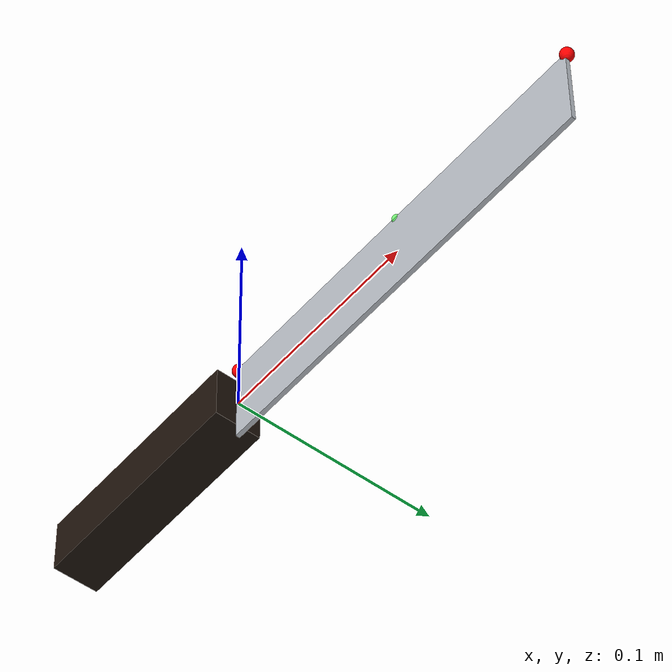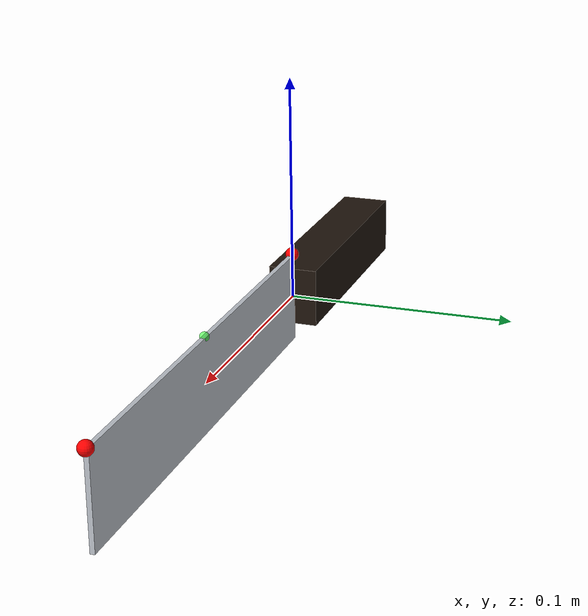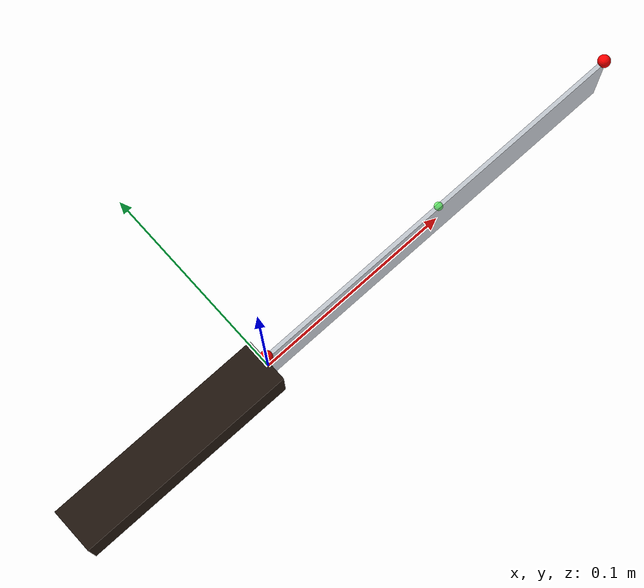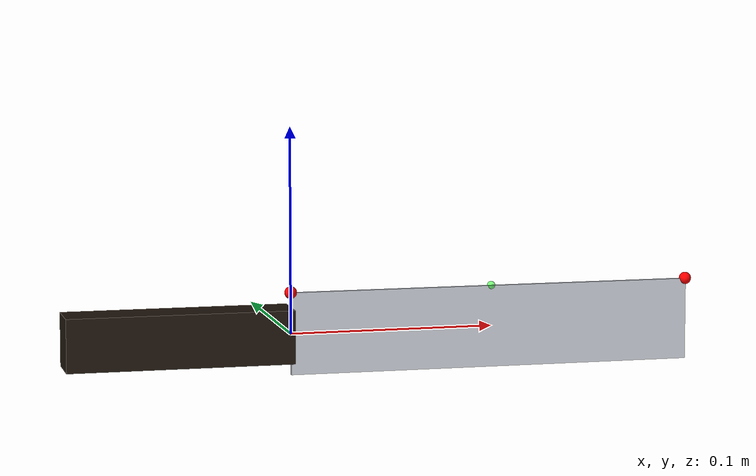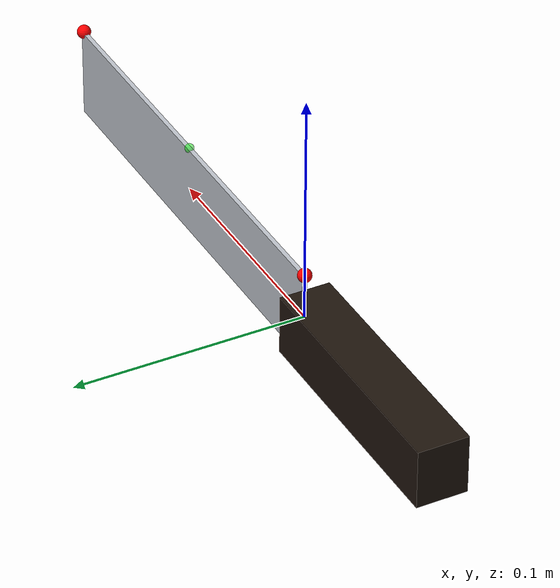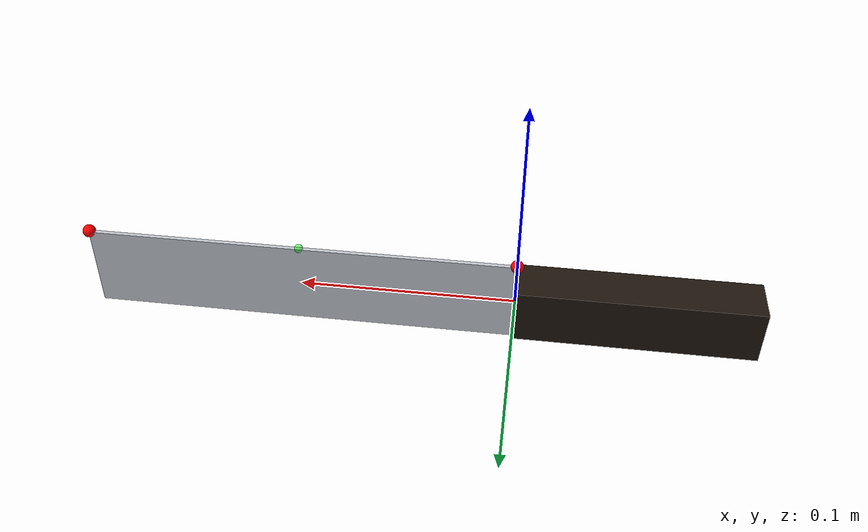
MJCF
<mujoco model="knife">
  <asset>
    <material name="knife_steel" rgba="0.75 0.77 0.80 1" specular="0.9" shininess="0.8"/>
    <material name="knife_handle" rgba="0.12 0.08 0.05 1"/>
  </asset>
  <default>
    <default class="knife">
      <geom condim="3" friction="0.6 0.005 0.0001" solref="0.005 1"/>
    </default>
  </default>
  <worldbody>
    <body name="knife" pos="0 0 0">
      <!-- handle, centred at x = -0.055 -->
      <geom class="knife" name="knife_handle" type="box" size="0.055 0.011 0.013"
            pos="-0.055 0 0" material="knife_handle" mass="0.08"/>
      <!-- blade body: box 200 x 2 x 40 mm, edge at +Z face -->
      <geom class="knife" name="knife_blade" type="box" size="0.100 0.001 0.020"
            pos="0.100 0 0" material="knife_steel" mass="0.08"/>
      <!-- edge sites on the +Z face -->
      <site name="blade_heel" pos="0.000 0 0.020" size="0.003" rgba="1 0 0 1"/>
      <site name="blade_tip"  pos="0.200 0 0.020" size="0.003" rgba="1 0 0 1"/>
      <site name="blade_frame" pos="0.100 0 0.020" size="0.002" rgba="0 1 0 0.5"/>
    </body>
  </worldbody>
</mujoco>
